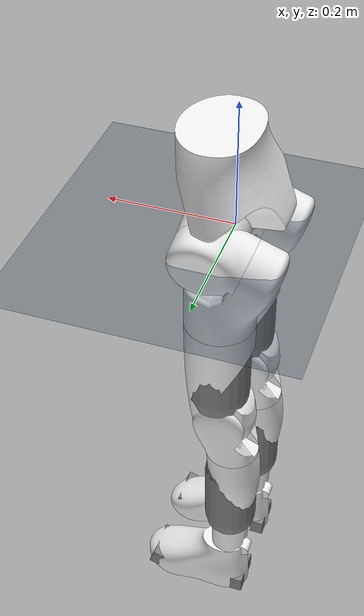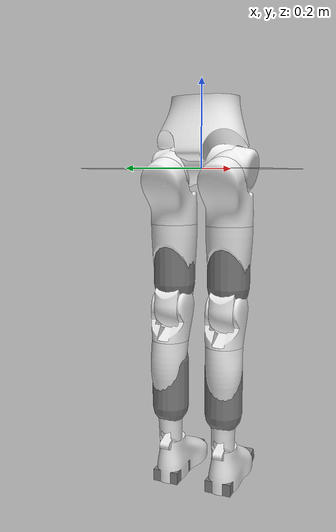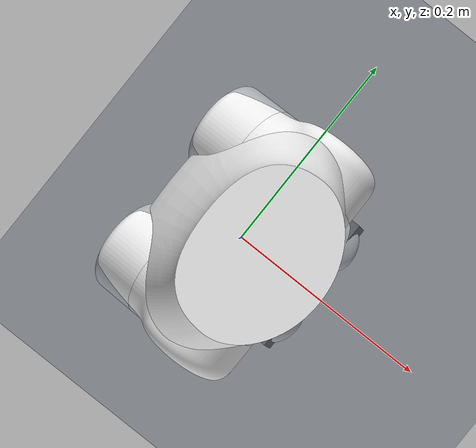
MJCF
<?xml version="1.0" encoding="utf-8"?>
<mujoco model="lite_biped_scene">
  <include file="lite_biped.xml"/>

  <statistic center="0 0 0.5" extent="1.6"/>

  <visual>
    <headlight diffuse="0.6 0.6 0.6" ambient="0.35 0.35 0.35" specular="0 0 0"/>
    <rgba haze="0.15 0.25 0.35 1"/>
    <global azimuth="120" elevation="-20"/>
  </visual>

  <asset>
    <texture type="2d" name="groundplane" builtin="checker" mark="edge"
             rgb1="0.2 0.3 0.4" rgb2="0.1 0.15 0.2" markrgb="0.8 0.8 0.8"
             width="300" height="300"/>
    <material name="groundplane" texture="groundplane" texuniform="true"
              texrepeat="5 5" reflectance="0.1"/>
  </asset>

  <worldbody>
    <light pos="0 0 3.0" dir="0 0 -1" directional="true"/>
    <geom name="floor" type="plane" size="0 0 0.05" material="groundplane"
          condim="3" friction="1.0 0.005 0.0001"/>
  </worldbody>

  <keyframe>
    <key name="home"
         qpos="0 0 0.80 1 0 0 0
               -0.1745 0 0 0.3491 0 -0.1745 0
               -0.1745 0 0 0.3491 0 -0.1745 0"/>
  </keyframe>
</mujoco>

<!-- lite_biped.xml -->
<mujoco model="lite_biped">
  <!-- GENERATED by robot_assets from Onshape CAD. Do not edit by hand. Regenerate: robot-assets-generate lite_biped -->
  <compiler angle="radian" meshdir="../meshes/visual/" />

  <option timestep="0.005" integrator="implicitfast" solver="Newton" cone="pyramidal" impratio="1" iterations="10" ls_iterations="20" /><asset>
    <mesh name="pelvis_visual" content_type="model/stl" file="pelvis_visual.stl" />
    <mesh name="left_hip_pitch_visual" content_type="model/stl" file="left_hip_pitch_visual.stl" />
    <mesh name="left_hip_roll_visual" content_type="model/stl" file="left_hip_roll_visual.stl" />
    <mesh name="left_hip_yaw_visual" content_type="model/stl" file="left_hip_yaw_visual.stl" />
    <mesh name="left_knee_pitch_visual" content_type="model/stl" file="left_knee_pitch_visual.stl" />
    <mesh name="left_ankle_yaw_visual" content_type="model/stl" file="left_ankle_yaw_visual.stl" />
    <mesh name="left_ankle_pitch_visual" content_type="model/stl" file="left_ankle_pitch_visual.stl" />
    <mesh name="left_foot_visual" content_type="model/stl" file="left_foot_visual.stl" />
    <mesh name="right_hip_pitch_visual" content_type="model/stl" file="right_hip_pitch_visual.stl" />
    <mesh name="right_hip_roll_visual" content_type="model/stl" file="right_hip_roll_visual.stl" />
    <mesh name="right_hip_yaw_visual" content_type="model/stl" file="right_hip_yaw_visual.stl" />
    <mesh name="right_knee_pitch_visual" content_type="model/stl" file="right_knee_pitch_visual.stl" />
    <mesh name="right_ankle_yaw_visual" content_type="model/stl" file="right_ankle_yaw_visual.stl" />
    <mesh name="right_ankle_pitch_visual" content_type="model/stl" file="right_ankle_pitch_visual.stl" />
    <mesh name="right_foot_visual" content_type="model/stl" file="right_foot_visual.stl" />
  </asset>

  <worldbody>
    <body name="pelvis">
      <joint name="floating_base_joint" type="free" limited="false" actuatorfrclimited="false" /><site name="imu_site" pos="0.0 0.0 0.0" /><inertial pos="0.0137049 6.97587e-07 0.0692011" quat="0.999864 -1.34288e-05 0.0164944 1.28012e-05" mass="2.1" diaginertia="0.00988318 0.00823366 0.0063777" />
      <geom pos="0.0137049 6.97587e-07 0.0692011" type="mesh" contype="0" conaffinity="0" group="1" density="0" rgba="0.933333 0.933333 0.933333 1" mesh="pelvis_visual" />
      <body name="left_hip_pitch" pos="0.02 0.07 0" quat="0.642787 -0.766045 0 0">
        <inertial pos="-0.0114774 0.00418673 0.0187959" quat="0.143691 0.579874 -0.102327 0.795379" mass="0.18" diaginertia="0.000298425 0.00023209 0.000171935" />
        <joint name="left_hip_pitch" pos="0 0 0" axis="0 0 1" range="-2.35619 0.785398" actuatorfrcrange="-36 36" frictionloss="0.1" armature="0.008" />
        <geom pos="-0.0114774 0.00418673 0.0187959" quat="0.642787 0.766045 0 0" type="mesh" contype="0" conaffinity="0" group="1" density="0" rgba="0.933333 0.933333 0.933333 1" mesh="left_hip_pitch_visual" />
        <body name="left_hip_roll" quat="0.683013 0.183012 0.704417 -0.0616252">
          <inertial pos="-4.8952e-08 0.0525082 -0.0652484" quat="0.382435 0.594774 -0.59476 0.382424" mass="0.93" diaginertia="0.00285203 0.00263146 0.00112675" />
          <joint name="left_hip_roll" pos="0 0 0" axis="0 0 1" range="-0.349066 1.5708" actuatorfrcrange="-36 36" frictionloss="0.1" armature="0.008" />
          <geom size="0.05 0.075" pos="0 0.181098 -0.0871979" quat="0.819152 0.573576 0 0" type="capsule" condim="1" />
          <geom pos="-4.8952e-08 0.0525082 -0.0652484" quat="0.579227 0.40558 -0.405579 0.579229" type="mesh" contype="0" conaffinity="0" group="1" density="0" rgba="0.933333 0.933333 0.933333 1" mesh="left_hip_roll_visual" />
          <body name="left_hip_yaw" pos="0 -0.0068404 -0.0187939" quat="0.579227 0.40558 -0.405579 0.579229">
            <inertial pos="0.00130442 -2.2783e-05 -0.237299" quat="0.708576 0.0178897 0.0179547 0.705179" mass="1.54" diaginertia="0.00874707 0.00858135 0.00191153" />
            <joint name="left_hip_yaw" pos="0 0 0" axis="0 0 1" range="-1.5708 1.5708" actuatorfrcrange="-17 17" frictionloss="0.1" armature="0.005" />
            <geom pos="0.00130442 -2.2783e-05 -0.237299" quat="1 0 0 0" type="mesh" contype="0" conaffinity="0" group="1" density="0" rgba="0.933333 0.933333 0.933333 1" mesh="left_hip_yaw_visual" />
            <body name="left_knee_pitch" pos="-0.01 0 -0.33" quat="0.707105 -0.707108 0 0">
              <inertial pos="-0.00486713 0.0372163 -0.000224083" quat="0.706661 0.699245 0.0760196 0.0768538" mass="0.23" diaginertia="0.000490196 0.000377566 0.000322724" />
              <joint name="left_knee_pitch" pos="0 0 0" axis="0 0 1" range="0 2.35619" actuatorfrcrange="-36 36" frictionloss="0.1" armature="0.008" />
              <geom size="0.045 0.06" pos="-0.015 0.19 0" quat="0.499998 0.5 0.5 -0.500002" type="capsule" condim="1" />
              <geom pos="-0.00486713 0.0372163 -0.000224083" quat="0.707105 0.707108 0 0" type="mesh" contype="0" conaffinity="0" group="1" density="0" rgba="0.933333 0.933333 0.933333 1" mesh="left_knee_pitch_visual" />
              <body name="left_ankle_yaw" pos="-0.015 0 0" quat="0.707105 0.707108 0 0">
                <inertial pos="-0.00304992 0.00150525 -0.18535" quat="0.723191 -0.0099567 -0.00753121 0.690535" mass="1.03" diaginertia="0.00552984 0.00549241 0.000826604" />
                <joint name="left_ankle_yaw" pos="0 0 0" axis="0 0 1" range="-0.785398 0.785398" actuatorfrcrange="-14 14" frictionloss="0.1" armature="0.002" />
                <geom pos="-0.00304992 0.00150525 -0.18535" quat="1 0 0 0" type="mesh" contype="0" conaffinity="0" group="1" density="0" rgba="0.933333 0.933333 0.933333 1" mesh="left_ankle_yaw_visual" />
                <body name="left_ankle_pitch" pos="0.01 0 -0.34" quat="0.707105 -0.707108 0 0">
                  <inertial pos="-0.00384209 0.0297371 3.1356e-08" quat="0.611225 0.355531 -0.611226 0.355534" mass="0.34" diaginertia="0.000245142 0.000197784 0.000125609" />
                  <joint name="left_ankle_pitch" pos="0 0 0" axis="0 0 1" range="-0.523599 0.872665" actuatorfrcrange="-14 14" frictionloss="0.1" armature="0.002" />
                  <geom pos="-0.00384209 0.0297371 3.1356e-08" quat="0.707105 0.707108 0 0" type="mesh" contype="0" conaffinity="0" group="1" density="0" rgba="0.933333 0.933333 0.933333 1" mesh="left_ankle_pitch_visual" />
                  <body name="left_foot" pos="0 0.04 0" quat="0.707105 0 0.707108 0">
                    <inertial pos="0.00124938 0.0227876 0.0398042" quat="0.994259 -0.101477 0.0262886 0.021467" mass="0.44" diaginertia="0.00134078 0.00122657 0.000447531" />
                    <joint name="left_ankle_roll" pos="0 0 0" axis="0 0 1" range="-0.349066 0.349066" actuatorfrcrange="-5.5 5.5" frictionloss="0.1" armature="0.001" />
                    <geom size="0.0325 0.06 0.015" pos="0 0.05 0.015" quat="0.707105 0.707108 0 0" type="box" condim="3" friction="0.6 0.005 0.0001" priority="1" />
                    <geom size="0.035 0.025 0.015" pos="0 0.04 0.11" quat="0.573577 0.819151 0 0" type="box" condim="3" friction="0.6 0.005 0.0001" priority="1" />
                    <geom pos="0.00124938 0.0227876 0.0398042" quat="0.499998 0.5 -0.5 0.500002" type="mesh" contype="0" conaffinity="0" group="1" density="0" rgba="0.933333 0.933333 0.933333 1" mesh="left_foot_visual" />
                  </body>
                </body>
              </body>
            </body>
          </body>
        </body>
      </body>
      <body name="right_hip_pitch" pos="0.02 -0.07 0" quat="0.766046 -0.642786 0 0">
        <inertial pos="-0.0114771 0.00418737 -0.0187964" quat="0.10235 0.795381 -0.143679 0.579871" mass="0.18" diaginertia="0.000298423 0.0002321 0.000171928" />
        <joint name="right_hip_pitch" pos="0 0 0" axis="0 0 1" range="-2.35619 0.785398" actuatorfrcrange="-36 36" frictionloss="0.1" armature="0.008" />
        <geom pos="-0.0114771 0.00418737 -0.0187964" quat="0.766046 0.642786 0 0" type="mesh" contype="0" conaffinity="0" group="1" density="0" rgba="0.933333 0.933333 0.933333 1" mesh="right_hip_pitch_visual" />
        <body name="right_hip_roll" quat="0.704416 0.0616286 0.683012 -0.183015">
          <inertial pos="-1.13349e-07 0.0525083 -0.0652488" quat="0.382434 0.594774 -0.594759 0.382426" mass="0.93" diaginertia="0.00285206 0.00263147 0.00112674" />
          <joint name="right_hip_roll" pos="0 0 0" axis="0 0 1" range="-1.5708 0.349066" actuatorfrcrange="-36 36" frictionloss="0.1" armature="0.008" />
          <geom size="0.05 0.075" pos="0 0.181098 -0.0871979" quat="0.819152 0.573576 0 0" type="capsule" condim="1" />
          <geom pos="-1.13349e-07 0.0525083 -0.0652488" quat="0.579227 0.40558 -0.405579 0.579229" type="mesh" contype="0" conaffinity="0" group="1" density="0" rgba="0.933333 0.933333 0.933333 1" mesh="right_hip_roll_visual" />
          <body name="right_hip_yaw" pos="0 -0.0068404 -0.0187939" quat="0.579227 0.40558 -0.405579 0.579229">
            <inertial pos="0.00130421 2.35733e-05 -0.237299" quat="0.705202 0.0179505 0.0178929 0.708554" mass="1.54" diaginertia="0.00874705 0.00858133 0.00191154" />
            <joint name="right_hip_yaw" pos="0 0 0" axis="0 0 1" range="-1.5708 1.5708" actuatorfrcrange="-17 17" frictionloss="0.1" armature="0.005" />
            <geom pos="0.00130421 2.35733e-05 -0.237299" quat="1 0 0 0" type="mesh" contype="0" conaffinity="0" group="1" density="0" rgba="0.933333 0.933333 0.933333 1" mesh="right_hip_yaw_visual" />
            <body name="right_knee_pitch" pos="-0.01 0 -0.33" quat="0.707105 -0.707108 0 0">
              <inertial pos="-0.0048642 0.0372186 0.000224747" quat="0.699331 0.706571 0.0768833 0.076041" mass="0.23" diaginertia="0.000490222 0.000377567 0.000322714" />
              <joint name="right_knee_pitch" pos="0 0 0" axis="0 0 1" range="0 2.35619" actuatorfrcrange="-36 36" frictionloss="0.1" armature="0.008" />
              <geom size="0.045 0.06" pos="-0.015 0.19 0" quat="0.499998 0.5 0.5 -0.500002" type="capsule" condim="1" />
              <geom pos="-0.0048642 0.0372186 0.000224747" quat="0.707105 0.707108 0 0" type="mesh" contype="0" conaffinity="0" group="1" density="0" rgba="0.933333 0.933333 0.933333 1" mesh="right_knee_pitch_visual" />
              <body name="right_ankle_yaw" pos="-0.015 0 0" quat="0.707105 0.707108 0 0">
                <inertial pos="-0.00304908 -0.0015054 -0.185348" quat="0.690451 -0.00753267 -0.00995694 0.723271" mass="1.03" diaginertia="0.00552984 0.00549244 0.000826601" />
                <joint name="right_ankle_yaw" pos="0 0 0" axis="0 0 1" range="-0.785398 0.785398" actuatorfrcrange="-14 14" frictionloss="0.1" armature="0.002" />
                <geom pos="-0.00304908 -0.0015054 -0.185348" quat="1 0 0 0" type="mesh" contype="0" conaffinity="0" group="1" density="0" rgba="0.933333 0.933333 0.933333 1" mesh="right_ankle_yaw_visual" />
                <body name="right_ankle_pitch" pos="0.01 0 -0.34" quat="0.707105 -0.707108 0 0">
                  <inertial pos="-0.00384209 0.0297371 3.1396e-08" quat="0.611225 0.355531 -0.611226 0.355534" mass="0.34" diaginertia="0.000245142 0.000197784 0.000125609" />
                  <joint name="right_ankle_pitch" pos="0 0 0" axis="0 0 1" range="-0.523599 0.872665" actuatorfrcrange="-14 14" frictionloss="0.1" armature="0.002" />
                  <geom pos="-0.00384209 0.0297371 3.1396e-08" quat="0.707105 0.707108 0 0" type="mesh" contype="0" conaffinity="0" group="1" density="0" rgba="0.933333 0.933333 0.933333 1" mesh="right_ankle_pitch_visual" />
                  <body name="right_foot" pos="0 0.04 0" quat="0.707105 0 0.707108 0">
                    <inertial pos="-0.0012494 0.0227876 0.039804" quat="0.994259 -0.101477 -0.0262888 -0.0214685" mass="0.44" diaginertia="0.00134078 0.00122657 0.000447531" />
                    <joint name="right_ankle_roll" pos="0 0 0" axis="0 0 1" range="-0.349066 0.349066" actuatorfrcrange="-5.5 5.5" frictionloss="0.1" armature="0.001" />
                    <geom size="0.0325 0.06 0.015" pos="0 0.05 0.015" quat="0.707105 0.707108 0 0" type="box" condim="3" friction="0.6 0.005 0.0001" priority="1" />
                    <geom size="0.035 0.025 0.015" pos="0 0.04 0.11" quat="0.573577 0.819151 0 0" type="box" condim="3" friction="0.6 0.005 0.0001" priority="1" />
                    <geom pos="-0.0012494 0.0227876 0.039804" quat="0.499998 0.5 -0.5 0.500002" type="mesh" contype="0" conaffinity="0" group="1" density="0" rgba="0.933333 0.933333 0.933333 1" mesh="right_foot_visual" />
                  </body>
                </body>
              </body>
            </body>
          </body>
        </body>
      </body>
    </body>
  </worldbody>
<sensor><framequat name="base_quat" objtype="site" objname="imu_site" /><gyro name="base_gyro" site="imu_site" /><accelerometer name="base_accel" site="imu_site" /><velocimeter name="base_vel" site="imu_site" /><framepos name="base_pos" objtype="site" objname="imu_site" /></sensor><actuator><motor name="left_hip_pitch" joint="left_hip_pitch" forcerange="-36.0 36.0" /><motor name="left_hip_roll" joint="left_hip_roll" forcerange="-36.0 36.0" /><motor name="left_hip_yaw" joint="left_hip_yaw" forcerange="-17.0 17.0" /><motor name="left_knee_pitch" joint="left_knee_pitch" forcerange="-36.0 36.0" /><motor name="left_ankle_yaw" joint="left_ankle_yaw" forcerange="-14.0 14.0" /><motor name="left_ankle_pitch" joint="left_ankle_pitch" forcerange="-14.0 14.0" /><motor name="left_ankle_roll" joint="left_ankle_roll" forcerange="-5.5 5.5" /><motor name="right_hip_pitch" joint="right_hip_pitch" forcerange="-36.0 36.0" /><motor name="right_hip_roll" joint="right_hip_roll" forcerange="-36.0 36.0" /><motor name="right_hip_yaw" joint="right_hip_yaw" forcerange="-17.0 17.0" /><motor name="right_knee_pitch" joint="right_knee_pitch" forcerange="-36.0 36.0" /><motor name="right_ankle_yaw" joint="right_ankle_yaw" forcerange="-14.0 14.0" /><motor name="right_ankle_pitch" joint="right_ankle_pitch" forcerange="-14.0 14.0" /><motor name="right_ankle_roll" joint="right_ankle_roll" forcerange="-5.5 5.5" /></actuator></mujoco>
